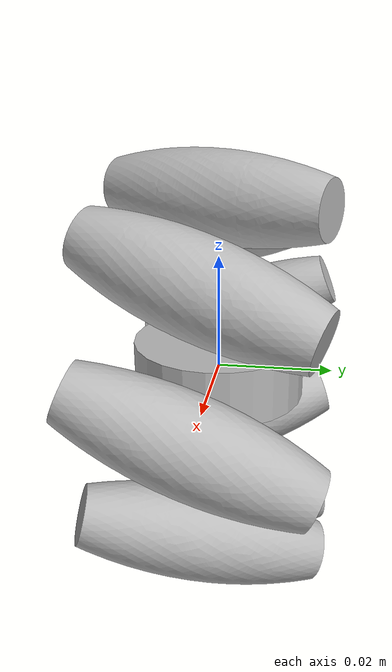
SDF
<?xml version='1.0'?>
<sdf version='1.11'>
  <model name='mecanum-wheel'>
	<!-- keep static for now -->
    <static>false</static>

	<link name='mecanum-base'>
	  <pose>0 0 0 0 0 0</pose>
	  <visual name='mb-v'>
	    <geometry>
		  <cylinder>
		    <radius>0.015</radius>
			<length>0.01</length>
		  </cylinder>
		</geometry>
	  </visual>
	  <collision name='mb-c'>
	    <geometry>
		  <cylinder>
		    <radius>0.015</radius>
			<length>0.01</length>
		  </cylinder>
		</geometry>
	  </collision>
	</link>

	<link name='mw-l1'>
	  <pose>0 0 0.03 0 0 -0.3927</pose>
      <inertial>
        <mass>0.00113845</mass>
        <inertia>
          <ixx>2.53776e-08</ixx>
          <ixy>0</ixy>
          <ixz>0</ixz>
          <iyy>2.53776e-08</iyy>
          <iyz>0</iyz>
          <izz>1.47666e-08</izz>
        </inertia>
        <pose frame=''>0 0 0 0 -0 0</pose>
      </inertial>
      <self_collide>0</self_collide>
      <kinematic>0</kinematic>
	  <visual name='mw-l1-v'>
	  	<geometry>
		  <mesh>
		    <uri>file://mecanum-roller.stl</uri>
			<scale>0.001 0.001 0.001</scale>
		  </mesh>
		</geometry>
	  </visual>
	  <collision name='mw-l1-c'>
	  	<geometry>
		  <mesh>
		    <uri>file://mecanum-roller.stl</uri>
			<scale>0.001 0.001 0.001</scale>
		  </mesh>
		</geometry>
        <surface>
          <friction>
            <ode>
              <mu>100</mu>
              <mu2>1</mu2>
              <fdir1>0 0 0</fdir1>
              <slip1>0</slip1>
              <slip2>10</slip2>
            </ode>
            <torsional>
              <coefficient>1</coefficient>
              <patch_radius>0</patch_radius>
              <surface_radius>0</surface_radius>
              <use_patch_radius>1</use_patch_radius>
              <ode>
                <slip>0</slip>
              </ode>
            </torsional>
          </friction>
          <bounce>
            <restitution_coefficient>0</restitution_coefficient>
            <threshold>1e+06</threshold>
          </bounce>
          <contact>
            <collide_without_contact>0</collide_without_contact>
            <collide_without_contact_bitmask>1</collide_without_contact_bitmask>
            <collide_bitmask>1</collide_bitmask>
            <ode>
              <soft_cfm>0.5</soft_cfm>
              <soft_erp>0.2</soft_erp>
              <kp>1e+13</kp>
              <kd>1</kd>
              <max_vel>0.01</max_vel>
              <min_depth>0</min_depth>
            </ode>
            <bullet>
              <split_impulse>1</split_impulse>
              <split_impulse_penetration_threshold>-0.01</split_impulse_penetration_threshold>
              <soft_cfm>0.5</soft_cfm>
              <soft_erp>0.2</soft_erp>
              <kp>1e+13</kp>
              <kd>1</kd>
            </bullet>
          </contact>
        </surface>
	  </collision>
	</link>

	<link name='mw-l2'>
	  <pose>0.0212 0 0.0212 -0.3654 0.7119 -0.5299</pose>
	  <visual name='mw-l2-v'>
	  	<geometry>
		  <mesh>
		    <uri>file://mecanum-roller.stl</uri>
			<scale>0.001 0.001 0.001</scale>
		  </mesh>
		</geometry>
	  </visual>
	  <collision name='mw-l2-c'>
	  	<geometry>
		  <mesh>
		    <uri>file://mecanum-roller.stl</uri>
			<scale>0.001 0.001 0.001</scale>
		  </mesh>
		</geometry>
        <surface>
          <friction>
            <ode>
              <mu>100</mu>
              <mu2>1</mu2>
              <fdir1>0 0 0</fdir1>
              <slip1>0</slip1>
              <slip2>10</slip2>
            </ode>
            <torsional>
              <coefficient>1</coefficient>
              <patch_radius>0</patch_radius>
              <surface_radius>0</surface_radius>
              <use_patch_radius>1</use_patch_radius>
              <ode>
                <slip>0</slip>
              </ode>
            </torsional>
          </friction>
          <bounce>
            <restitution_coefficient>0</restitution_coefficient>
            <threshold>1e+06</threshold>
          </bounce>
          <contact>
            <collide_without_contact>0</collide_without_contact>
            <collide_without_contact_bitmask>1</collide_without_contact_bitmask>
            <collide_bitmask>1</collide_bitmask>
            <ode>
              <soft_cfm>0.5</soft_cfm>
              <soft_erp>0.2</soft_erp>
              <kp>1e+13</kp>
              <kd>1</kd>
              <max_vel>0.01</max_vel>
              <min_depth>0</min_depth>
            </ode>
            <bullet>
              <split_impulse>1</split_impulse>
              <split_impulse_penetration_threshold>-0.01</split_impulse_penetration_threshold>
              <soft_cfm>0.5</soft_cfm>
              <soft_erp>0.2</soft_erp>
              <kp>1e+13</kp>
              <kd>1</kd>
            </bullet>
          </contact>
        </surface>
	  </collision>
	</link>

	<link name='mw-l3'>
	  <pose>0.03 0 0 -1.5707 1.178 -1.5707</pose>
	  <visual name='mw-l3-v'>
	  	<geometry>
		  <mesh>
		    <uri>file://mecanum-roller.stl</uri>
			<scale>0.001 0.001 0.001</scale>
		  </mesh>
		</geometry>
	  </visual>
	  <collision name='mw-l3-c'>
	  	<geometry>
		  <mesh>
		    <uri>file://mecanum-roller.stl</uri>
			<scale>0.001 0.001 0.001</scale>
		  </mesh>
		</geometry>
        <surface>
          <friction>
            <ode>
              <mu>100</mu>
              <mu2>1</mu2>
              <fdir1>0 0 0</fdir1>
              <slip1>0</slip1>
              <slip2>10</slip2>
            </ode>
            <torsional>
              <coefficient>1</coefficient>
              <patch_radius>0</patch_radius>
              <surface_radius>0</surface_radius>
              <use_patch_radius>1</use_patch_radius>
              <ode>
                <slip>0</slip>
              </ode>
            </torsional>
          </friction>
          <bounce>
            <restitution_coefficient>0</restitution_coefficient>
            <threshold>1e+06</threshold>
          </bounce>
          <contact>
            <collide_without_contact>0</collide_without_contact>
            <collide_without_contact_bitmask>1</collide_without_contact_bitmask>
            <collide_bitmask>1</collide_bitmask>
            <ode>
              <soft_cfm>0.5</soft_cfm>
              <soft_erp>0.2</soft_erp>
              <kp>1e+13</kp>
              <kd>1</kd>
              <max_vel>0.01</max_vel>
              <min_depth>0</min_depth>
            </ode>
            <bullet>
              <split_impulse>1</split_impulse>
              <split_impulse_penetration_threshold>-0.01</split_impulse_penetration_threshold>
              <soft_cfm>0.5</soft_cfm>
              <soft_erp>0.2</soft_erp>
              <kp>1e+13</kp>
              <kd>1</kd>
            </bullet>
          </contact>
        </surface>
	  </collision>
	</link>

	<link name='mw-l4'>
	  <pose>0.0212 0 -0.0212 -2.7761 0.7119 -2.6116</pose>
	  <visual name='mw-l4-v'>
	  	<geometry>
		  <mesh>
		    <uri>file://mecanum-roller.stl</uri>
			<scale>0.001 0.001 0.001</scale>
		  </mesh>
		</geometry>
	  </visual>
	  <collision name='mw-l4-c'>
	  	<geometry>
		  <mesh>
		    <uri>file://mecanum-roller.stl</uri>
			<scale>0.001 0.001 0.001</scale>
		  </mesh>
		</geometry>
        <surface>
          <friction>
            <ode>
              <mu>100</mu>
              <mu2>1</mu2>
              <fdir1>0 0 0</fdir1>
              <slip1>0</slip1>
              <slip2>10</slip2>
            </ode>
            <torsional>
              <coefficient>1</coefficient>
              <patch_radius>0</patch_radius>
              <surface_radius>0</surface_radius>
              <use_patch_radius>1</use_patch_radius>
              <ode>
                <slip>0</slip>
              </ode>
            </torsional>
          </friction>
          <bounce>
            <restitution_coefficient>0</restitution_coefficient>
            <threshold>1e+06</threshold>
          </bounce>
          <contact>
            <collide_without_contact>0</collide_without_contact>
            <collide_without_contact_bitmask>1</collide_without_contact_bitmask>
            <collide_bitmask>1</collide_bitmask>
            <ode>
              <soft_cfm>0.5</soft_cfm>
              <soft_erp>0.2</soft_erp>
              <kp>1e+13</kp>
              <kd>1</kd>
              <max_vel>0.01</max_vel>
              <min_depth>0</min_depth>
            </ode>
            <bullet>
              <split_impulse>1</split_impulse>
              <split_impulse_penetration_threshold>-0.01</split_impulse_penetration_threshold>
              <soft_cfm>0.5</soft_cfm>
              <soft_erp>0.2</soft_erp>
              <kp>1e+13</kp>
              <kd>1</kd>
            </bullet>
          </contact>
        </surface>
	  </collision>
	</link>

	<link name='mw-l5'>
	  <pose>0 0 -0.03 0 0 -2.7488</pose>
	  <visual name='mw-l5-v'>
	  	<geometry>
		  <mesh>
		    <uri>file://mecanum-roller.stl</uri>
			<scale>0.001 0.001 0.001</scale>
		  </mesh>
		</geometry>
	  </visual>
	  <collision name='mw-l5-c'>
	  	<geometry>
		  <mesh>
		    <uri>file://mecanum-roller.stl</uri>
			<scale>0.001 0.001 0.001</scale>
		  </mesh>
		</geometry>
        <surface>
          <friction>
            <ode>
              <mu>100</mu>
              <mu2>1</mu2>
              <fdir1>0 0 0</fdir1>
              <slip1>0</slip1>
              <slip2>10</slip2>
            </ode>
            <torsional>
              <coefficient>1</coefficient>
              <patch_radius>0</patch_radius>
              <surface_radius>0</surface_radius>
              <use_patch_radius>1</use_patch_radius>
              <ode>
                <slip>0</slip>
              </ode>
            </torsional>
          </friction>
          <bounce>
            <restitution_coefficient>0</restitution_coefficient>
            <threshold>1e+06</threshold>
          </bounce>
          <contact>
            <collide_without_contact>0</collide_without_contact>
            <collide_without_contact_bitmask>1</collide_without_contact_bitmask>
            <collide_bitmask>1</collide_bitmask>
            <ode>
              <soft_cfm>0.5</soft_cfm>
              <soft_erp>0.2</soft_erp>
              <kp>1e+13</kp>
              <kd>1</kd>
              <max_vel>0.01</max_vel>
              <min_depth>0</min_depth>
            </ode>
            <bullet>
              <split_impulse>1</split_impulse>
              <split_impulse_penetration_threshold>-0.01</split_impulse_penetration_threshold>
              <soft_cfm>0.5</soft_cfm>
              <soft_erp>0.2</soft_erp>
              <kp>1e+13</kp>
              <kd>1</kd>
            </bullet>
          </contact>
        </surface>
	  </collision>
	</link>

	<link name='mw-l6'>
	  <pose>-0.0212 0 -0.0212 2.776 -0.7119 -2.6117</pose>
	  <visual name='mw-l6-v'>
	  	<geometry>
		  <mesh>
		    <uri>file://mecanum-roller.stl</uri>
			<scale>0.001 0.001 0.001</scale>
		  </mesh>
		</geometry>
	  </visual>
	  <collision name='mw-l6-c'>
	  	<geometry>
		  <mesh>
		    <uri>file://mecanum-roller.stl</uri>
			<scale>0.001 0.001 0.001</scale>
		  </mesh>
		</geometry>
        <surface>
          <friction>
            <ode>
              <mu>100</mu>
              <mu2>1</mu2>
              <fdir1>0 0 0</fdir1>
              <slip1>0</slip1>
              <slip2>10</slip2>
            </ode>
            <torsional>
              <coefficient>1</coefficient>
              <patch_radius>0</patch_radius>
              <surface_radius>0</surface_radius>
              <use_patch_radius>1</use_patch_radius>
              <ode>
                <slip>0</slip>
              </ode>
            </torsional>
          </friction>
          <bounce>
            <restitution_coefficient>0</restitution_coefficient>
            <threshold>1e+06</threshold>
          </bounce>
          <contact>
            <collide_without_contact>0</collide_without_contact>
            <collide_without_contact_bitmask>1</collide_without_contact_bitmask>
            <collide_bitmask>1</collide_bitmask>
            <ode>
              <soft_cfm>0.5</soft_cfm>
              <soft_erp>0.2</soft_erp>
              <kp>1e+13</kp>
              <kd>1</kd>
              <max_vel>0.01</max_vel>
              <min_depth>0</min_depth>
            </ode>
            <bullet>
              <split_impulse>1</split_impulse>
              <split_impulse_penetration_threshold>-0.01</split_impulse_penetration_threshold>
              <soft_cfm>0.5</soft_cfm>
              <soft_erp>0.2</soft_erp>
              <kp>1e+13</kp>
              <kd>1</kd>
            </bullet>
          </contact>
        </surface>
	  </collision>
	</link>

	<link name='mw-l7'>
	  <pose>-0.03 0 0 1.5707 -1.17809 -1.5707</pose>
	  <visual name='mw-l7-v'>
	  	<geometry>
		  <mesh>
		    <uri>file://mecanum-roller.stl</uri>
			<scale>0.001 0.001 0.001</scale>
		  </mesh>
		</geometry>
	  </visual>
	  <collision name='mw-l7-c'>
	  	<geometry>
		  <mesh>
		    <uri>file://mecanum-roller.stl</uri>
			<scale>0.001 0.001 0.001</scale>
		  </mesh>
		</geometry>
        <surface>
          <friction>
            <ode>
              <mu>100</mu>
              <mu2>1</mu2>
              <fdir1>0 0 0</fdir1>
              <slip1>0</slip1>
              <slip2>10</slip2>
            </ode>
            <torsional>
              <coefficient>1</coefficient>
              <patch_radius>0</patch_radius>
              <surface_radius>0</surface_radius>
              <use_patch_radius>1</use_patch_radius>
              <ode>
                <slip>0</slip>
              </ode>
            </torsional>
          </friction>
          <bounce>
            <restitution_coefficient>0</restitution_coefficient>
            <threshold>1e+06</threshold>
          </bounce>
          <contact>
            <collide_without_contact>0</collide_without_contact>
            <collide_without_contact_bitmask>1</collide_without_contact_bitmask>
            <collide_bitmask>1</collide_bitmask>
            <ode>
              <soft_cfm>0.5</soft_cfm>
              <soft_erp>0.2</soft_erp>
              <kp>1e+13</kp>
              <kd>1</kd>
              <max_vel>0.01</max_vel>
              <min_depth>0</min_depth>
            </ode>
            <bullet>
              <split_impulse>1</split_impulse>
              <split_impulse_penetration_threshold>-0.01</split_impulse_penetration_threshold>
              <soft_cfm>0.5</soft_cfm>
              <soft_erp>0.2</soft_erp>
              <kp>1e+13</kp>
              <kd>1</kd>
            </bullet>
          </contact>
        </surface>
	  </collision>
	</link>

	<link name='mw-l8'>
	  <pose>-0.0212 0 0.0212 0.3654 -0.7119 -0.5299</pose>
	  <visual name='mw-l8-v'>
	  	<geometry>
		  <mesh>
		    <uri>file://mecanum-roller.stl</uri>
			<scale>0.001 0.001 0.001</scale>
		  </mesh>
		</geometry>
	  </visual>
	  <collision name='mw-l8-c'>
	  	<geometry>
		  <mesh>
		    <uri>file://mecanum-roller.stl</uri>
			<scale>0.001 0.001 0.001</scale>
		  </mesh>
		</geometry>
        <surface>
          <friction>
            <ode>
              <mu>100</mu>
              <mu2>1</mu2>
              <fdir1>0 0 0</fdir1>
              <slip1>0</slip1>
              <slip2>10</slip2>
            </ode>
            <torsional>
              <coefficient>1</coefficient>
              <patch_radius>0</patch_radius>
              <surface_radius>0</surface_radius>
              <use_patch_radius>1</use_patch_radius>
              <ode>
                <slip>0</slip>
              </ode>
            </torsional>
          </friction>
          <bounce>
            <restitution_coefficient>0</restitution_coefficient>
            <threshold>1e+06</threshold>
          </bounce>
          <contact>
            <collide_without_contact>0</collide_without_contact>
            <collide_without_contact_bitmask>1</collide_without_contact_bitmask>
            <collide_bitmask>1</collide_bitmask>
            <ode>
              <soft_cfm>0.5</soft_cfm>
              <soft_erp>0.2</soft_erp>
              <kp>1e+13</kp>
              <kd>1</kd>
              <max_vel>0.01</max_vel>
              <min_depth>0</min_depth>
            </ode>
            <bullet>
              <split_impulse>1</split_impulse>
              <split_impulse_penetration_threshold>-0.01</split_impulse_penetration_threshold>
              <soft_cfm>0.5</soft_cfm>
              <soft_erp>0.2</soft_erp>
              <kp>1e+13</kp>
              <kd>1</kd>
            </bullet>
          </contact>
        </surface>
	  </collision>
	</link>

	<!-- NOTE: Joint rotations are expressed in parent frame -->
	<joint name='mw-j1' type='revolute'>
	  <pose>0 0 0 0 0 0</pose>
	  <parent>mecanum-base</parent>
	  <child>mw-l1</child>
	  <axis>
	    <xyz>0 1 0</xyz>
        <use_parent_model_frame>0</use_parent_model_frame>
        <limit>
          <lower>-1.79769e+308</lower>
          <upper>1.79769e+308</upper>
          <effort>-1</effort>
          <velocity>-1</velocity>
        </limit>
        <dynamics>
          <spring_reference>0</spring_reference>
          <spring_stiffness>0</spring_stiffness>
          <damping>0</damping>
          <friction>0</friction>
        </dynamics>
	  </axis>
      <physics>
        <ode>
          <limit>
            <cfm>0</cfm>
            <erp>0.2</erp>
          </limit>
          <suspension>
            <cfm>0</cfm>
            <erp>0.2</erp>
          </suspension>
        </ode>
      </physics>
	</joint>

	<joint name='mw-j2' type='revolute'>
	  <pose>0 0 0 0 0 0</pose>
	  <parent>mecanum-base</parent>
	  <child>mw-l2</child>
	  <axis>
	    <xyz>0 1 0</xyz>
        <use_parent_model_frame>0</use_parent_model_frame>
        <limit>
          <lower>-1.79769e+308</lower>
          <upper>1.79769e+308</upper>
          <effort>-1</effort>
          <velocity>-1</velocity>
        </limit>
        <dynamics>
          <spring_reference>0</spring_reference>
          <spring_stiffness>0</spring_stiffness>
          <damping>0</damping>
          <friction>0</friction>
        </dynamics>
	  </axis>
      <physics>
        <ode>
          <limit>
            <cfm>0</cfm>
            <erp>0.2</erp>
          </limit>
          <suspension>
            <cfm>0</cfm>
            <erp>0.2</erp>
          </suspension>
        </ode>
      </physics>
	</joint>

	<joint name='mw-j3' type='revolute'>
	  <pose>0 0 0 0 0 0</pose>
	  <parent>mecanum-base</parent>
	  <child>mw-l3</child>
	  <axis>
	    <xyz>0 1 0</xyz>
        <use_parent_model_frame>0</use_parent_model_frame>
        <limit>
          <lower>-1.79769e+308</lower>
          <upper>1.79769e+308</upper>
          <effort>-1</effort>
          <velocity>-1</velocity>
        </limit>
        <dynamics>
          <spring_reference>0</spring_reference>
          <spring_stiffness>0</spring_stiffness>
          <damping>0</damping>
          <friction>0</friction>
        </dynamics>
	  </axis>
      <physics>
        <ode>
          <limit>
            <cfm>0</cfm>
            <erp>0.2</erp>
          </limit>
          <suspension>
            <cfm>0</cfm>
            <erp>0.2</erp>
          </suspension>
        </ode>
      </physics>
	</joint>

	<joint name='mw-j4' type='revolute'>
	  <pose>0 0 0 0 0 0</pose>
	  <parent>mecanum-base</parent>
	  <child>mw-l4</child>
	  <axis>
	    <xyz>0 1 0</xyz>
        <use_parent_model_frame>0</use_parent_model_frame>
        <limit>
          <lower>-1.79769e+308</lower>
          <upper>1.79769e+308</upper>
          <effort>-1</effort>
          <velocity>-1</velocity>
        </limit>
        <dynamics>
          <spring_reference>0</spring_reference>
          <spring_stiffness>0</spring_stiffness>
          <damping>0</damping>
          <friction>0</friction>
        </dynamics>
	  </axis>
      <physics>
        <ode>
          <limit>
            <cfm>0</cfm>
            <erp>0.2</erp>
          </limit>
          <suspension>
            <cfm>0</cfm>
            <erp>0.2</erp>
          </suspension>
        </ode>
      </physics>
	</joint>

	<joint name='mwj5' type='revolute'>
	  <pose>0 0 0 0 0 0</pose>
	  <parent>mecanum-base</parent>
	  <child>mw-l5</child>
	  <axis>
	    <xyz>0 1 0</xyz>
        <use_parent_model_frame>0</use_parent_model_frame>
        <limit>
          <lower>-1.79769e+308</lower>
          <upper>1.79769e+308</upper>
          <effort>-1</effort>
          <velocity>-1</velocity>
        </limit>
        <dynamics>
          <spring_reference>0</spring_reference>
          <spring_stiffness>0</spring_stiffness>
          <damping>0</damping>
          <friction>0</friction>
        </dynamics>
	  </axis>
      <physics>
        <ode>
          <limit>
            <cfm>0</cfm>
            <erp>0.2</erp>
          </limit>
          <suspension>
            <cfm>0</cfm>
            <erp>0.2</erp>
          </suspension>
        </ode>
      </physics>
	</joint>

	<joint name='mw-j6' type='revolute'>
	  <pose>0 0 0 0 0 0</pose>
	  <parent>mecanum-base</parent>
	  <child>mw-l6</child>
	  <axis>
	    <xyz>0 1 0</xyz>
        <use_parent_model_frame>0</use_parent_model_frame>
        <limit>
          <lower>-1.79769e+308</lower>
          <upper>1.79769e+308</upper>
          <effort>-1</effort>
          <velocity>-1</velocity>
        </limit>
        <dynamics>
          <spring_reference>0</spring_reference>
          <spring_stiffness>0</spring_stiffness>
          <damping>0</damping>
          <friction>0</friction>
        </dynamics>
	  </axis>
      <physics>
        <ode>
          <limit>
            <cfm>0</cfm>
            <erp>0.2</erp>
          </limit>
          <suspension>
            <cfm>0</cfm>
            <erp>0.2</erp>
          </suspension>
        </ode>
      </physics>
	</joint>

	<joint name='mw-j7' type='revolute'>
	  <pose>0 0 0 0 0 0</pose>
	  <parent>mecanum-base</parent>
	  <child>mw-l7</child>
	  <axis>
	    <xyz>0 1 0</xyz>
        <use_parent_model_frame>0</use_parent_model_frame>
        <limit>
          <lower>-1.79769e+308</lower>
          <upper>1.79769e+308</upper>
          <effort>-1</effort>
          <velocity>-1</velocity>
        </limit>
        <dynamics>
          <spring_reference>0</spring_reference>
          <spring_stiffness>0</spring_stiffness>
          <damping>0</damping>
          <friction>0</friction>
        </dynamics>
	  </axis>
      <physics>
        <ode>
          <limit>
            <cfm>0</cfm>
            <erp>0.2</erp>
          </limit>
          <suspension>
            <cfm>0</cfm>
            <erp>0.2</erp>
          </suspension>
        </ode>
      </physics>
	</joint>

	<joint name='mw-j8' type='revolute'>
	  <pose>0 0 0 0 0 0</pose>
	  <parent>mecanum-base</parent>
	  <child>mw-l8</child>
	  <axis>
	    <xyz>0 1 0</xyz>
        <use_parent_model_frame>0</use_parent_model_frame>
        <limit>
          <lower>-1.79769e+308</lower>
          <upper>1.79769e+308</upper>
          <effort>-1</effort>
          <velocity>-1</velocity>
        </limit>
        <dynamics>
          <spring_reference>0</spring_reference>
          <spring_stiffness>0</spring_stiffness>
          <damping>0</damping>
          <friction>0</friction>
        </dynamics>
	  </axis>
      <physics>
        <ode>
          <limit>
            <cfm>0</cfm>
            <erp>0.2</erp>
          </limit>
          <suspension>
            <cfm>0</cfm>
            <erp>0.2</erp>
          </suspension>
        </ode>
      </physics>
	</joint>

  </model>
</sdf>
